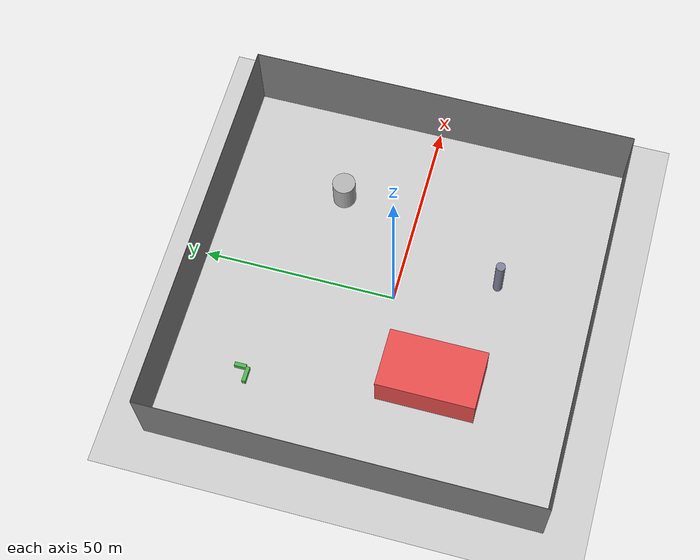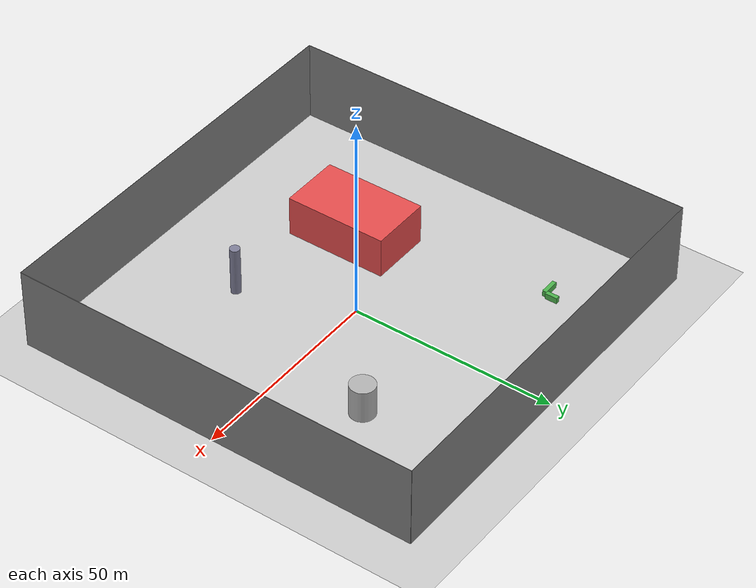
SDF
<?xml version="1.0" ?>
<sdf version="1.6">
  <world name="drone_world">

    <!-- 太阳光照 -->
    <include>
      <uri>model://sun</uri>
    </include>

    <!-- 地面平面 -->
    <include>
      <uri>model://ground_plane</uri>
    </include>

    <!-- 物理引擎，必须指定 type 且 collision/visual 要有 name -->
    <physics name="default_physics" type="ode" default="0">
      <gravity>0 0 -9.81</gravity>
      <ode>
        <solver>
          <type>quick</type>
          <iters>10</iters>
          <precon_iters>0</precon_iters>
          <sor>1.3</sor>
        </solver>
        <constraints>
          <cfm>0.0</cfm>
          <erp>0.2</erp>
          <contact_max_correcting_vel>100.0</contact_max_correcting_vel>
          <contact_surface_layer>0.001</contact_surface_layer>
        </constraints>
      </ode>
      <real_time_update_rate>1000.0</real_time_update_rate>
      <real_time_factor>1.0</real_time_factor>
    </physics>

    <!-- 风场插件 -->
    <plugin name="wind_plugin" filename="libgazebo_wind_plugin.so">
      <alwaysOn>true</alwaysOn>
      <updateRate>10.0</updateRate>
      <velocity>5.0 2.0 0.0</velocity>
      <affect_all>false</affect_all>
      <startupDelay>0.0</startupDelay>
      <turbulence>0.1</turbulence>
    </plugin>

    <!-- 飞行边界墙（100x100x20） -->
    <model name="boundary">
      <!-- 前墙 +Y -->
      <link name="front_wall">
        <collision name="collision_front">
          <pose>0 50 10 0 0 0</pose>
          <geometry><box><size>100 0.1 20</size></box></geometry>
        </collision>
        <visual name="visual_front">
          <pose>0 50 10 0 0 0</pose>
          <geometry><box><size>100 0.1 20</size></box></geometry>
          <material><ambient>0.5 0.5 0.5 1</ambient><diffuse>0.5 0.5 0.5 1</diffuse></material>
        </visual>
      </link>
      <!-- 后墙 -Y -->
      <link name="back_wall">
        <collision name="collision_back">
          <pose>0 -50 10 0 0 0</pose>
          <geometry><box><size>100 0.1 20</size></box></geometry>
        </collision>
        <visual name="visual_back">
          <pose>0 -50 10 0 0 0</pose>
          <geometry><box><size>100 0.1 20</size></box></geometry>
          <material><ambient>0.5 0.5 0.5 1</ambient><diffuse>0.5 0.5 0.5 1</diffuse></material>
        </visual>
      </link>
      <!-- 左墙 -X -->
      <link name="left_wall">
        <collision name="collision_left">
          <pose>-50 0 10 0 0 0</pose>
          <geometry><box><size>0.1 100 20</size></box></geometry>
        </collision>
        <visual name="visual_left">
          <pose>-50 0 10 0 0 0</pose>
          <geometry><box><size>0.1 100 20</size></box></geometry>
          <material><ambient>0.5 0.5 0.5 1</ambient><diffuse>0.5 0.5 0.5 1</diffuse></material>
        </visual>
      </link>
      <!-- 右墙 +X -->
      <link name="right_wall">
        <collision name="collision_right">
          <pose>50 0 10 0 0 0</pose>
          <geometry><box><size>0.1 100 20</size></box></geometry>
        </collision>
        <visual name="visual_right">
          <pose>50 0 10 0 0 0</pose>
          <geometry><box><size>0.1 100 20</size></box></geometry>
          <material><ambient>0.5 0.5 0.5 1</ambient><diffuse>0.5 0.5 0.5 1</diffuse></material>
        </visual>
      </link>

      <!-- 固定关节 -->
      <joint name="world_to_front" type="fixed"><parent>world</parent><child>front_wall</child></joint>
      <joint name="world_to_back" type="fixed"><parent>world</parent><child>back_wall</child></joint>
      <joint name="world_to_left" type="fixed"><parent>world</parent><child>left_wall</child></joint>
      <joint name="world_to_right" type="fixed"><parent>world</parent><child>right_wall</child></joint>
    </model>

    <!-- 障碍物1：化工储罐 -->
    <model name="storage_tank">
      <pose>25 20 0 0 0 0</pose>
      <link name="tank_body">
        <collision name="collision_tank">
          <geometry><cylinder><radius>3.0</radius><length>8.0</length></cylinder></geometry>
          <pose>0 0 4 0 0 0</pose>
        </collision>
        <visual name="visual_tank">
          <geometry><cylinder><radius>3.0</radius><length>8.0</length></cylinder></geometry>
          <pose>0 0 4 0 0 0</pose>
          <material><ambient>0.5 0.5 0.5 1</ambient><diffuse>0.7 0.7 0.7 1</diffuse></material>
        </visual>
        <inertial>
          <mass>1000.0</mass>
          <inertia><ixx>5000</ixx><iyy>5000</iyy><izz>800</izz><ixy>0</ixy><ixz>0</ixz><iyz>0</iyz></inertia>
        </inertial>
      </link>
      <static>true</static>
    </model>

    <!-- 障碍物2：厂房 -->
    <model name="factory_building">
      <pose>-20 -15 0 0 0 0</pose>
      <link name="building_body">
        <collision name="collision_building">
          <geometry><box><size>15 25 10</size></box></geometry>
          <pose>0 0 5 0 0 0</pose>
        </collision>
        <visual name="visual_building">
          <geometry><box><size>15 25 10</size></box></geometry>
          <pose>0 0 5 0 0 0</pose>
          <material><ambient>0.8 0.2 0.2 1</ambient><diffuse>0.9 0.3 0.3 1</diffuse></material>
        </visual>
        <inertial>
          <mass>2000.0</mass>
          <inertia><ixx>20000</ixx><iyy>20000</iyy><izz>10000</izz><ixy>0</ixy><ixz>0</ixz><iyz>0</iyz></inertia>
        </inertial>
      </link>
      <static>true</static>
    </model>

    <!-- 障碍物3：烟囱塔 -->
    <model name="chimney_tower">
      <pose>10 -25 0 0 0 0</pose>
      <link name="tower_body">
        <collision name="collision_tower">
          <geometry><cylinder><radius>1.2</radius><length>12.0</length></cylinder></geometry>
          <pose>0 0 6 0 0 0</pose>
        </collision>
        <visual name="visual_tower">
          <geometry><cylinder><radius>1.2</radius><length>12.0</length></cylinder></geometry>
          <pose>0 0 6 0 0 0</pose>
          <material><ambient>0.4 0.4 0.5 1</ambient><diffuse>0.5 0.5 0.6 1</diffuse></material>
        </visual>
        <inertial>
          <mass>500.0</mass>
          <inertia><ixx>500</ixx><iyy>500</iyy><izz>800</izz><ixy>0</ixy><ixz>0</ixz><iyz>0</iyz></inertia>
        </inertial>
      </link>
      <static>true</static>
    </model>

    <!-- 障碍物4：低矮设备区1 -->
    <model name="pipe_obstacle_1">
      <pose>-30 30 0 0 0 0</pose>
      <link name="pipe_link">
        <collision name="collision_pipe1">
          <geometry><box><size>4 1 1.5</size></box></geometry>
          <pose>0 0 0.75 0 0 0</pose>
        </collision>
        <visual name="visual_pipe1">
          <geometry><box><size>4 1 1.5</size></box></geometry>
          <pose>0 0 0.75 0 0 0</pose>
          <material><ambient>0.2 0.6 0.2 1</ambient><diffuse>0.3 0.7 0.3 1</diffuse></material>
        </visual>
        <inertial>
          <mass>100.0</mass>
          <inertia><ixx>100</ixx><iyy>50</iyy><izz>100</izz><ixy>0</ixy><ixz>0</ixz><iyz>0</iyz></inertia>
        </inertial>
      </link>
      <static>true</static>
    </model>

    <!-- 障碍物5：低矮设备区2 -->
    <model name="pipe_obstacle_2">
      <pose>-28 32 0 0 0 0</pose>
      <link name="pipe_link2">
        <collision name="collision_pipe2">
          <geometry><box><size>1 3 1.5</size></box></geometry>
          <pose>0 0 0.75 0 0 0</pose>
        </collision>
        <visual name="visual_pipe2">
          <geometry><box><size>1 3 1.5</size></box></geometry>
          <pose>0 0 0.75 0 0 0</pose>
          <material><ambient>0.2 0.6 0.2 1</ambient><diffuse>0.3 0.7 0.3 1</diffuse></material>
        </visual>
        <inertial>
          <mass>80.0</mass>
          <inertia><ixx>50</ixx><iyy>100</iyy><izz>50</izz><ixy>0</ixy><ixz>0</ixz><iyz>0</iyz></inertia>
        </inertial>
      </link>
      <static>true</static>
    </model>

  </world>
</sdf>
